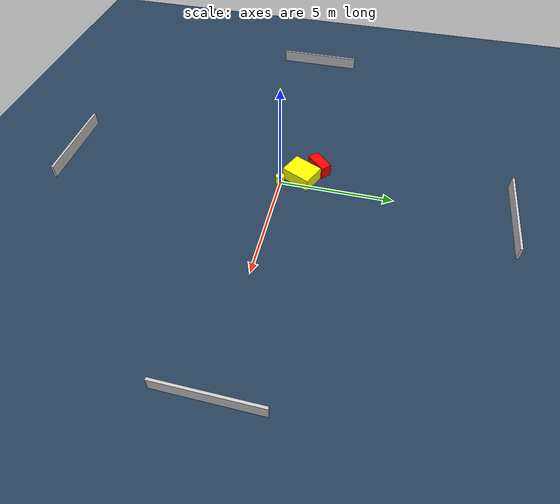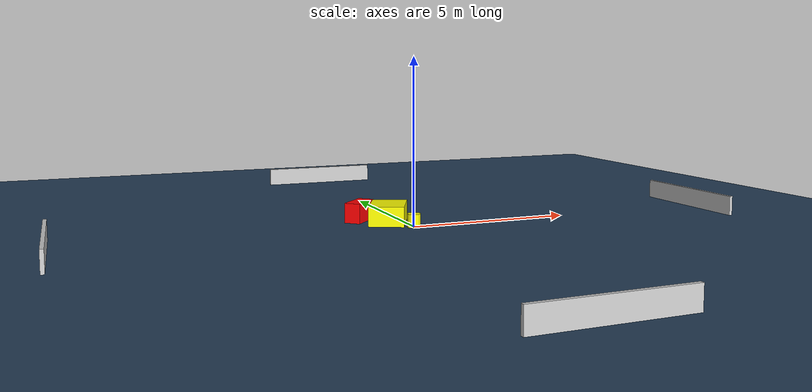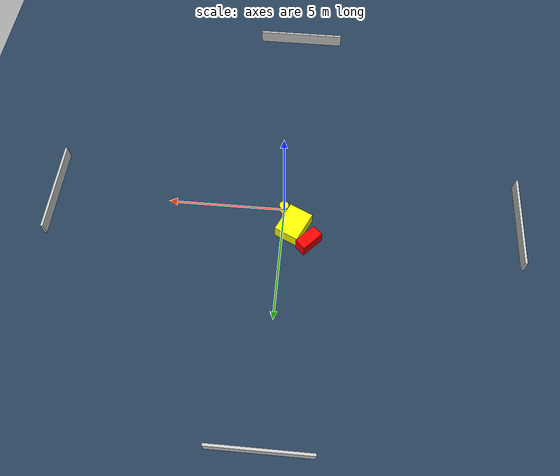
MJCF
<?xml version="1.0" ?>
<mujoco model="generated_environment">
  <option timestep="0.01" integrator="RK4" cone="elliptic"/>
  <default>
    <geom density="1"/>
  </default>
  <asset>
    <texture builtin="gradient" height="3072" name="skybox" rgb1="0.3 0.5 0.7" rgb2="0 0 0" type="skybox" width="512"/>
    <texture builtin="checker" height="300" name="groundplane" rgb1="0.2 0.3 0.4" rgb2="0.1 0.2 0.3" type="2d" width="300"/>
    <material name="groundplane" reflectance="0.2" texrepeat="5 5" texture="groundplane"/>
  </asset>
  <worldbody>
    <light dir="0 0 -1" directional="true" pos="0 0 1.5"/>
    <geom condim="3" friction="0.5 0.005 0.001" material="groundplane" name="floor" pos="0 0 0" size="0 0 0.05" type="plane"/>
    <body name="walls">
      <geom name="wall_1" condim="4" pos="-10.0 0.0 0.3" rgba="0.800000011920929 0.800000011920929 0.800000011920929 1.0" size="0.05 2.0 0.3" type="box"/>
      <geom name="wall_2" condim="4" pos="10.0 0.0 0.3" rgba="0.800000011920929 0.800000011920929 0.800000011920929 1.0" size="0.05 2.0 0.3" type="box"/>
      <geom name="wall_3" condim="4" pos="0.0 -10.0 0.3" rgba="0.800000011920929 0.800000011920929 0.800000011920929 1.0" size="2.0 0.05 0.3" type="box"/>
      <geom name="wall_4" condim="4" pos="0.0 10.0 0.3" rgba="0.800000011920929 0.800000011920929 0.800000011920929 1.0" size="2.0 0.05 0.3" type="box"/>
    </body>
    <body name="robot">
      <joint name="joint_x" type="slide" pos="0 0 0" axis="1 0 0"/>
      <joint name="joint_y" type="slide" pos="0 0 0" axis="0 1 0"/>
      <geom name="robot" type="cylinder" pos="0.0 0.0 0.2" size="0.2 0.2 0.0" mass="5.0" friction="1.0 0.005 0.0001" condim="4" rgba="1.0 1.0 0.0 1.0"/>
    </body>
    <body name="obstacle_1_movable">
      <geom name="obstacle_1_movable" condim="4" pos="-0.47930808854468376 0.8847363788415019 0.3" euler="0 0 244.8159601686038" friction="0.0 0.005 0.001" rgba="1.0 1.0 0.0 1.0" size="0.6717964406483847 0.52781769801063 0.3" type="box" mass="0.1"/>
      <joint type="free"/>
    </body>
    <body name="obstacle_2_static">
      <geom name="obstacle_2_static" condim="4" pos="-1.1653266630291077 1.5665374182688023 0.3" euler="0 0 226.3769269757104" friction="0.0 0.005 0.001" rgba="1.0 0.0 0.0 1.0" size="0.5081646108607645 0.2515403688418031 0.3" type="box"/>
    </body>
  </worldbody>
  <actuator>
    <motor name="actuator_x" joint="joint_x" gear="1" ctrlrange="-1 1"/>
    <motor name="actuator_y" joint="joint_y" gear="1" ctrlrange="-1 1"/>
  </actuator>
</mujoco>
